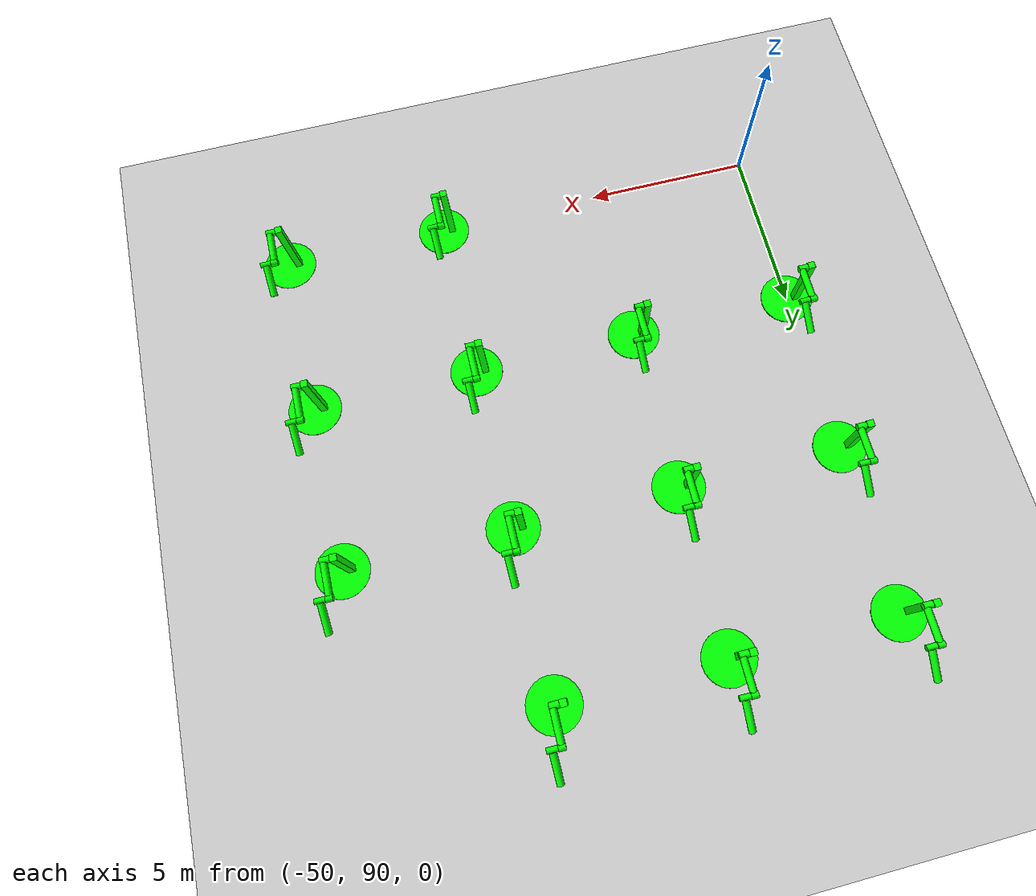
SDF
<sdf version="1.6">
 <world name="double_pendulums">
  <model name="ground_plane">
   <static>true</static>
   <link name="link">
    <collision name="collision">
     <geometry><plane><normal>0 0 1</normal><size>100 100</size></plane></geometry>
    </collision>
    <visual name="visual">
     <geometry><plane><normal>0 0 1</normal><size>100 100</size></plane></geometry>
     <material>
      <ambient>0.8 0.8 0.8 1</ambient>
      <diffuse>0.8 0.8 0.8 1</diffuse>
      <specular>0.8 0.8 0.8 1</specular>
     </material>
    </visual>
   </link>
  </model>
  <model name="dbl_pendulum_452">
   <pose>-40 90 0 0 0 0</pose>
   <link name="base">
    <inertial><mass>100</mass></inertial>
    <visual name="vis_plate_on_ground">
     <pose>0 0 0.01 0 0 0</pose>
     <geometry><cylinder><radius>0.8</radius><length>0.02</length></cylinder></geometry>
     <material><ambient>0 1 0 1</ambient><diffuse>0 1 0 1</diffuse><specular>0 1 0 1</specular></material>
    </visual>
    <visual name="vis_pole">
     <pose>-0.275 0 1.1 0 0 0</pose>
     <geometry><box><size>0.2 0.2 2.2</size></box></geometry>
     <material><ambient>0 1 0 1</ambient><diffuse>0 1 0 1</diffuse><specular>0 1 0 1</specular></material>
    </visual>
    <collision name="col_plate_on_ground">
     <pose>0 0 0.01 0 0 0</pose>
     <geometry><cylinder><radius>0.8</radius><length>0.02</length></cylinder></geometry>
    </collision>
    <collision name="col_pole">
     <pose>-0.275 0 1.1 0 0 0</pose>
     <geometry><box><size>0.2 0.2 2.2</size></box></geometry>
    </collision>
   </link>
   <link name="upper_link">
    <pose>0 0 2.1 -1.5708 0 0</pose>
    <inertial><pose>0 0 0.5 0 0 0</pose></inertial>
    <visual name="vis_upper_joint">
     <pose>-0.05 0 0 0 1.5708 0</pose>
     <geometry><cylinder><radius>0.1</radius><length>0.3</length></cylinder></geometry>
     <material><ambient>0 1 0 1</ambient><diffuse>0 1 0 1</diffuse><specular>0 1 0 1</specular></material>
    </visual>
    <visual name="vis_lower_joint">
     <pose>0 0 1.0 0 1.5708 0</pose>
     <geometry><cylinder><radius>0.1</radius><length>0.2</length></cylinder></geometry>
     <material><ambient>0 1 0 1</ambient><diffuse>0 1 0 1</diffuse><specular>0 1 0 1</specular></material>
    </visual>
    <visual name="vis_cylinder">
     <pose>0 0 0.5 0 0 0</pose>
     <geometry><cylinder><radius>0.1</radius><length>0.9</length></cylinder></geometry>
     <material><ambient>0 1 0 1</ambient><diffuse>0 1 0 1</diffuse><specular>0 1 0 1</specular></material>
    </visual>
    <collision name="col_upper_joint">
     <pose>-0.05 0 0 0 1.5708 0</pose>
     <geometry><cylinder><radius>0.1</radius><length>0.3</length></cylinder></geometry>
    </collision>
    <collision name="col_lower_joint">
     <pose>0 0 1.0 0 1.5708 0</pose>
     <geometry><cylinder><radius>0.1</radius><length>0.2</length></cylinder></geometry>
    </collision>
    <collision name="col_cylinder">
     <pose>0 0 0.5 0 0 0</pose>
     <geometry><cylinder><radius>0.1</radius><length>0.9</length></cylinder></geometry>
    </collision>
   </link>
   <link name="lower_link">
    <pose>0.25 1.0 2.1 -2 0 0</pose>
    <inertial><pose>0 0 0.5 0 0 0</pose></inertial>
    <visual name="vis_lower_joint">
     <pose>0 0 0 0 1.5708 0</pose>
     <geometry><cylinder><radius>0.08</radius><length>0.3</length></cylinder></geometry>
     <material><ambient>0 1 0 1</ambient><diffuse>0 1 0 1</diffuse><specular>0 1 0 1</specular></material>
    </visual>
    <visual name="vis_cylinder">
     <pose>0 0 0.5 0 0 0</pose>
     <geometry><cylinder><radius>0.1</radius><length>0.9</length></cylinder></geometry>
     <material><ambient>0 1 0 1</ambient><diffuse>0 1 0 1</diffuse><specular>0 1 0 1</specular></material>
    </visual>
    <collision name="col_lower_joint">
     <pose>0 0 0 0 1.5708 0</pose>
     <geometry><cylinder><radius>0.08</radius><length>0.3</length></cylinder></geometry>
    </collision>
    <collision name="col_cylinder">
     <pose>0 0 0.5 0 0 0</pose>
     <geometry><cylinder><radius>0.1</radius><length>0.9</length></cylinder></geometry>
    </collision>
   </link>
   <joint name="upper_joint" type="revolute">
    <parent>base</parent>
    <child>upper_link</child>
    <axis><xyz>1.0 0 0</xyz></axis>
   </joint>
   <joint name="lower_joint" type="revolute">
    <parent>upper_link</parent>
    <child>lower_link</child>
    <axis><xyz>1.0 0 0</xyz></axis>
   </joint>
  </model>
  <model name="dbl_pendulum_453">
   <pose>-35 90 0 0 0 0</pose>
   <link name="base">
    <inertial><mass>100</mass></inertial>
    <visual name="vis_plate_on_ground">
     <pose>0 0 0.01 0 0 0</pose>
     <geometry><cylinder><radius>0.8</radius><length>0.02</length></cylinder></geometry>
     <material><ambient>0 1 0 1</ambient><diffuse>0 1 0 1</diffuse><specular>0 1 0 1</specular></material>
    </visual>
    <visual name="vis_pole">
     <pose>-0.275 0 1.1 0 0 0</pose>
     <geometry><box><size>0.2 0.2 2.2</size></box></geometry>
     <material><ambient>0 1 0 1</ambient><diffuse>0 1 0 1</diffuse><specular>0 1 0 1</specular></material>
    </visual>
    <collision name="col_plate_on_ground">
     <pose>0 0 0.01 0 0 0</pose>
     <geometry><cylinder><radius>0.8</radius><length>0.02</length></cylinder></geometry>
    </collision>
    <collision name="col_pole">
     <pose>-0.275 0 1.1 0 0 0</pose>
     <geometry><box><size>0.2 0.2 2.2</size></box></geometry>
    </collision>
   </link>
   <link name="upper_link">
    <pose>0 0 2.1 -1.5708 0 0</pose>
    <inertial><pose>0 0 0.5 0 0 0</pose></inertial>
    <visual name="vis_upper_joint">
     <pose>-0.05 0 0 0 1.5708 0</pose>
     <geometry><cylinder><radius>0.1</radius><length>0.3</length></cylinder></geometry>
     <material><ambient>0 1 0 1</ambient><diffuse>0 1 0 1</diffuse><specular>0 1 0 1</specular></material>
    </visual>
    <visual name="vis_lower_joint">
     <pose>0 0 1.0 0 1.5708 0</pose>
     <geometry><cylinder><radius>0.1</radius><length>0.2</length></cylinder></geometry>
     <material><ambient>0 1 0 1</ambient><diffuse>0 1 0 1</diffuse><specular>0 1 0 1</specular></material>
    </visual>
    <visual name="vis_cylinder">
     <pose>0 0 0.5 0 0 0</pose>
     <geometry><cylinder><radius>0.1</radius><length>0.9</length></cylinder></geometry>
     <material><ambient>0 1 0 1</ambient><diffuse>0 1 0 1</diffuse><specular>0 1 0 1</specular></material>
    </visual>
    <collision name="col_upper_joint">
     <pose>-0.05 0 0 0 1.5708 0</pose>
     <geometry><cylinder><radius>0.1</radius><length>0.3</length></cylinder></geometry>
    </collision>
    <collision name="col_lower_joint">
     <pose>0 0 1.0 0 1.5708 0</pose>
     <geometry><cylinder><radius>0.1</radius><length>0.2</length></cylinder></geometry>
    </collision>
    <collision name="col_cylinder">
     <pose>0 0 0.5 0 0 0</pose>
     <geometry><cylinder><radius>0.1</radius><length>0.9</length></cylinder></geometry>
    </collision>
   </link>
   <link name="lower_link">
    <pose>0.25 1.0 2.1 -2 0 0</pose>
    <inertial><pose>0 0 0.5 0 0 0</pose></inertial>
    <visual name="vis_lower_joint">
     <pose>0 0 0 0 1.5708 0</pose>
     <geometry><cylinder><radius>0.08</radius><length>0.3</length></cylinder></geometry>
     <material><ambient>0 1 0 1</ambient><diffuse>0 1 0 1</diffuse><specular>0 1 0 1</specular></material>
    </visual>
    <visual name="vis_cylinder">
     <pose>0 0 0.5 0 0 0</pose>
     <geometry><cylinder><radius>0.1</radius><length>0.9</length></cylinder></geometry>
     <material><ambient>0 1 0 1</ambient><diffuse>0 1 0 1</diffuse><specular>0 1 0 1</specular></material>
    </visual>
    <collision name="col_lower_joint">
     <pose>0 0 0 0 1.5708 0</pose>
     <geometry><cylinder><radius>0.08</radius><length>0.3</length></cylinder></geometry>
    </collision>
    <collision name="col_cylinder">
     <pose>0 0 0.5 0 0 0</pose>
     <geometry><cylinder><radius>0.1</radius><length>0.9</length></cylinder></geometry>
    </collision>
   </link>
   <joint name="upper_joint" type="revolute">
    <parent>base</parent>
    <child>upper_link</child>
    <axis><xyz>1.0 0 0</xyz></axis>
   </joint>
   <joint name="lower_joint" type="revolute">
    <parent>upper_link</parent>
    <child>lower_link</child>
    <axis><xyz>1.0 0 0</xyz></axis>
   </joint>
  </model>
  <model name="dbl_pendulum_475">
   <pose>-50 95 0 0 0 0</pose>
   <link name="base">
    <inertial><mass>100</mass></inertial>
    <visual name="vis_plate_on_ground">
     <pose>0 0 0.01 0 0 0</pose>
     <geometry><cylinder><radius>0.8</radius><length>0.02</length></cylinder></geometry>
     <material><ambient>0 1 0 1</ambient><diffuse>0 1 0 1</diffuse><specular>0 1 0 1</specular></material>
    </visual>
    <visual name="vis_pole">
     <pose>-0.275 0 1.1 0 0 0</pose>
     <geometry><box><size>0.2 0.2 2.2</size></box></geometry>
     <material><ambient>0 1 0 1</ambient><diffuse>0 1 0 1</diffuse><specular>0 1 0 1</specular></material>
    </visual>
    <collision name="col_plate_on_ground">
     <pose>0 0 0.01 0 0 0</pose>
     <geometry><cylinder><radius>0.8</radius><length>0.02</length></cylinder></geometry>
    </collision>
    <collision name="col_pole">
     <pose>-0.275 0 1.1 0 0 0</pose>
     <geometry><box><size>0.2 0.2 2.2</size></box></geometry>
    </collision>
   </link>
   <link name="upper_link">
    <pose>0 0 2.1 -1.5708 0 0</pose>
    <inertial><pose>0 0 0.5 0 0 0</pose></inertial>
    <visual name="vis_upper_joint">
     <pose>-0.05 0 0 0 1.5708 0</pose>
     <geometry><cylinder><radius>0.1</radius><length>0.3</length></cylinder></geometry>
     <material><ambient>0 1 0 1</ambient><diffuse>0 1 0 1</diffuse><specular>0 1 0 1</specular></material>
    </visual>
    <visual name="vis_lower_joint">
     <pose>0 0 1.0 0 1.5708 0</pose>
     <geometry><cylinder><radius>0.1</radius><length>0.2</length></cylinder></geometry>
     <material><ambient>0 1 0 1</ambient><diffuse>0 1 0 1</diffuse><specular>0 1 0 1</specular></material>
    </visual>
    <visual name="vis_cylinder">
     <pose>0 0 0.5 0 0 0</pose>
     <geometry><cylinder><radius>0.1</radius><length>0.9</length></cylinder></geometry>
     <material><ambient>0 1 0 1</ambient><diffuse>0 1 0 1</diffuse><specular>0 1 0 1</specular></material>
    </visual>
    <collision name="col_upper_joint">
     <pose>-0.05 0 0 0 1.5708 0</pose>
     <geometry><cylinder><radius>0.1</radius><length>0.3</length></cylinder></geometry>
    </collision>
    <collision name="col_lower_joint">
     <pose>0 0 1.0 0 1.5708 0</pose>
     <geometry><cylinder><radius>0.1</radius><length>0.2</length></cylinder></geometry>
    </collision>
    <collision name="col_cylinder">
     <pose>0 0 0.5 0 0 0</pose>
     <geometry><cylinder><radius>0.1</radius><length>0.9</length></cylinder></geometry>
    </collision>
   </link>
   <link name="lower_link">
    <pose>0.25 1.0 2.1 -2 0 0</pose>
    <inertial><pose>0 0 0.5 0 0 0</pose></inertial>
    <visual name="vis_lower_joint">
     <pose>0 0 0 0 1.5708 0</pose>
     <geometry><cylinder><radius>0.08</radius><length>0.3</length></cylinder></geometry>
     <material><ambient>0 1 0 1</ambient><diffuse>0 1 0 1</diffuse><specular>0 1 0 1</specular></material>
    </visual>
    <visual name="vis_cylinder">
     <pose>0 0 0.5 0 0 0</pose>
     <geometry><cylinder><radius>0.1</radius><length>0.9</length></cylinder></geometry>
     <material><ambient>0 1 0 1</ambient><diffuse>0 1 0 1</diffuse><specular>0 1 0 1</specular></material>
    </visual>
    <collision name="col_lower_joint">
     <pose>0 0 0 0 1.5708 0</pose>
     <geometry><cylinder><radius>0.08</radius><length>0.3</length></cylinder></geometry>
    </collision>
    <collision name="col_cylinder">
     <pose>0 0 0.5 0 0 0</pose>
     <geometry><cylinder><radius>0.1</radius><length>0.9</length></cylinder></geometry>
    </collision>
   </link>
   <joint name="upper_joint" type="revolute">
    <parent>base</parent>
    <child>upper_link</child>
    <axis><xyz>1.0 0 0</xyz></axis>
   </joint>
   <joint name="lower_joint" type="revolute">
    <parent>upper_link</parent>
    <child>lower_link</child>
    <axis><xyz>1.0 0 0</xyz></axis>
   </joint>
  </model>
  <model name="dbl_pendulum_476">
   <pose>-45 95 0 0 0 0</pose>
   <link name="base">
    <inertial><mass>100</mass></inertial>
    <visual name="vis_plate_on_ground">
     <pose>0 0 0.01 0 0 0</pose>
     <geometry><cylinder><radius>0.8</radius><length>0.02</length></cylinder></geometry>
     <material><ambient>0 1 0 1</ambient><diffuse>0 1 0 1</diffuse><specular>0 1 0 1</specular></material>
    </visual>
    <visual name="vis_pole">
     <pose>-0.275 0 1.1 0 0 0</pose>
     <geometry><box><size>0.2 0.2 2.2</size></box></geometry>
     <material><ambient>0 1 0 1</ambient><diffuse>0 1 0 1</diffuse><specular>0 1 0 1</specular></material>
    </visual>
    <collision name="col_plate_on_ground">
     <pose>0 0 0.01 0 0 0</pose>
     <geometry><cylinder><radius>0.8</radius><length>0.02</length></cylinder></geometry>
    </collision>
    <collision name="col_pole">
     <pose>-0.275 0 1.1 0 0 0</pose>
     <geometry><box><size>0.2 0.2 2.2</size></box></geometry>
    </collision>
   </link>
   <link name="upper_link">
    <pose>0 0 2.1 -1.5708 0 0</pose>
    <inertial><pose>0 0 0.5 0 0 0</pose></inertial>
    <visual name="vis_upper_joint">
     <pose>-0.05 0 0 0 1.5708 0</pose>
     <geometry><cylinder><radius>0.1</radius><length>0.3</length></cylinder></geometry>
     <material><ambient>0 1 0 1</ambient><diffuse>0 1 0 1</diffuse><specular>0 1 0 1</specular></material>
    </visual>
    <visual name="vis_lower_joint">
     <pose>0 0 1.0 0 1.5708 0</pose>
     <geometry><cylinder><radius>0.1</radius><length>0.2</length></cylinder></geometry>
     <material><ambient>0 1 0 1</ambient><diffuse>0 1 0 1</diffuse><specular>0 1 0 1</specular></material>
    </visual>
    <visual name="vis_cylinder">
     <pose>0 0 0.5 0 0 0</pose>
     <geometry><cylinder><radius>0.1</radius><length>0.9</length></cylinder></geometry>
     <material><ambient>0 1 0 1</ambient><diffuse>0 1 0 1</diffuse><specular>0 1 0 1</specular></material>
    </visual>
    <collision name="col_upper_joint">
     <pose>-0.05 0 0 0 1.5708 0</pose>
     <geometry><cylinder><radius>0.1</radius><length>0.3</length></cylinder></geometry>
    </collision>
    <collision name="col_lower_joint">
     <pose>0 0 1.0 0 1.5708 0</pose>
     <geometry><cylinder><radius>0.1</radius><length>0.2</length></cylinder></geometry>
    </collision>
    <collision name="col_cylinder">
     <pose>0 0 0.5 0 0 0</pose>
     <geometry><cylinder><radius>0.1</radius><length>0.9</length></cylinder></geometry>
    </collision>
   </link>
   <link name="lower_link">
    <pose>0.25 1.0 2.1 -2 0 0</pose>
    <inertial><pose>0 0 0.5 0 0 0</pose></inertial>
    <visual name="vis_lower_joint">
     <pose>0 0 0 0 1.5708 0</pose>
     <geometry><cylinder><radius>0.08</radius><length>0.3</length></cylinder></geometry>
     <material><ambient>0 1 0 1</ambient><diffuse>0 1 0 1</diffuse><specular>0 1 0 1</specular></material>
    </visual>
    <visual name="vis_cylinder">
     <pose>0 0 0.5 0 0 0</pose>
     <geometry><cylinder><radius>0.1</radius><length>0.9</length></cylinder></geometry>
     <material><ambient>0 1 0 1</ambient><diffuse>0 1 0 1</diffuse><specular>0 1 0 1</specular></material>
    </visual>
    <collision name="col_lower_joint">
     <pose>0 0 0 0 1.5708 0</pose>
     <geometry><cylinder><radius>0.08</radius><length>0.3</length></cylinder></geometry>
    </collision>
    <collision name="col_cylinder">
     <pose>0 0 0.5 0 0 0</pose>
     <geometry><cylinder><radius>0.1</radius><length>0.9</length></cylinder></geometry>
    </collision>
   </link>
   <joint name="upper_joint" type="revolute">
    <parent>base</parent>
    <child>upper_link</child>
    <axis><xyz>1.0 0 0</xyz></axis>
   </joint>
   <joint name="lower_joint" type="revolute">
    <parent>upper_link</parent>
    <child>lower_link</child>
    <axis><xyz>1.0 0 0</xyz></axis>
   </joint>
  </model>
  <model name="dbl_pendulum_477">
   <pose>-40 95 0 0 0 0</pose>
   <link name="base">
    <inertial><mass>100</mass></inertial>
    <visual name="vis_plate_on_ground">
     <pose>0 0 0.01 0 0 0</pose>
     <geometry><cylinder><radius>0.8</radius><length>0.02</length></cylinder></geometry>
     <material><ambient>0 1 0 1</ambient><diffuse>0 1 0 1</diffuse><specular>0 1 0 1</specular></material>
    </visual>
    <visual name="vis_pole">
     <pose>-0.275 0 1.1 0 0 0</pose>
     <geometry><box><size>0.2 0.2 2.2</size></box></geometry>
     <material><ambient>0 1 0 1</ambient><diffuse>0 1 0 1</diffuse><specular>0 1 0 1</specular></material>
    </visual>
    <collision name="col_plate_on_ground">
     <pose>0 0 0.01 0 0 0</pose>
     <geometry><cylinder><radius>0.8</radius><length>0.02</length></cylinder></geometry>
    </collision>
    <collision name="col_pole">
     <pose>-0.275 0 1.1 0 0 0</pose>
     <geometry><box><size>0.2 0.2 2.2</size></box></geometry>
    </collision>
   </link>
   <link name="upper_link">
    <pose>0 0 2.1 -1.5708 0 0</pose>
    <inertial><pose>0 0 0.5 0 0 0</pose></inertial>
    <visual name="vis_upper_joint">
     <pose>-0.05 0 0 0 1.5708 0</pose>
     <geometry><cylinder><radius>0.1</radius><length>0.3</length></cylinder></geometry>
     <material><ambient>0 1 0 1</ambient><diffuse>0 1 0 1</diffuse><specular>0 1 0 1</specular></material>
    </visual>
    <visual name="vis_lower_joint">
     <pose>0 0 1.0 0 1.5708 0</pose>
     <geometry><cylinder><radius>0.1</radius><length>0.2</length></cylinder></geometry>
     <material><ambient>0 1 0 1</ambient><diffuse>0 1 0 1</diffuse><specular>0 1 0 1</specular></material>
    </visual>
    <visual name="vis_cylinder">
     <pose>0 0 0.5 0 0 0</pose>
     <geometry><cylinder><radius>0.1</radius><length>0.9</length></cylinder></geometry>
     <material><ambient>0 1 0 1</ambient><diffuse>0 1 0 1</diffuse><specular>0 1 0 1</specular></material>
    </visual>
    <collision name="col_upper_joint">
     <pose>-0.05 0 0 0 1.5708 0</pose>
     <geometry><cylinder><radius>0.1</radius><length>0.3</length></cylinder></geometry>
    </collision>
    <collision name="col_lower_joint">
     <pose>0 0 1.0 0 1.5708 0</pose>
     <geometry><cylinder><radius>0.1</radius><length>0.2</length></cylinder></geometry>
    </collision>
    <collision name="col_cylinder">
     <pose>0 0 0.5 0 0 0</pose>
     <geometry><cylinder><radius>0.1</radius><length>0.9</length></cylinder></geometry>
    </collision>
   </link>
   <link name="lower_link">
    <pose>0.25 1.0 2.1 -2 0 0</pose>
    <inertial><pose>0 0 0.5 0 0 0</pose></inertial>
    <visual name="vis_lower_joint">
     <pose>0 0 0 0 1.5708 0</pose>
     <geometry><cylinder><radius>0.08</radius><length>0.3</length></cylinder></geometry>
     <material><ambient>0 1 0 1</ambient><diffuse>0 1 0 1</diffuse><specular>0 1 0 1</specular></material>
    </visual>
    <visual name="vis_cylinder">
     <pose>0 0 0.5 0 0 0</pose>
     <geometry><cylinder><radius>0.1</radius><length>0.9</length></cylinder></geometry>
     <material><ambient>0 1 0 1</ambient><diffuse>0 1 0 1</diffuse><specular>0 1 0 1</specular></material>
    </visual>
    <collision name="col_lower_joint">
     <pose>0 0 0 0 1.5708 0</pose>
     <geometry><cylinder><radius>0.08</radius><length>0.3</length></cylinder></geometry>
    </collision>
    <collision name="col_cylinder">
     <pose>0 0 0.5 0 0 0</pose>
     <geometry><cylinder><radius>0.1</radius><length>0.9</length></cylinder></geometry>
    </collision>
   </link>
   <joint name="upper_joint" type="revolute">
    <parent>base</parent>
    <child>upper_link</child>
    <axis><xyz>1.0 0 0</xyz></axis>
   </joint>
   <joint name="lower_joint" type="revolute">
    <parent>upper_link</parent>
    <child>lower_link</child>
    <axis><xyz>1.0 0 0</xyz></axis>
   </joint>
  </model>
  <model name="dbl_pendulum_478">
   <pose>-35 95 0 0 0 0</pose>
   <link name="base">
    <inertial><mass>100</mass></inertial>
    <visual name="vis_plate_on_ground">
     <pose>0 0 0.01 0 0 0</pose>
     <geometry><cylinder><radius>0.8</radius><length>0.02</length></cylinder></geometry>
     <material><ambient>0 1 0 1</ambient><diffuse>0 1 0 1</diffuse><specular>0 1 0 1</specular></material>
    </visual>
    <visual name="vis_pole">
     <pose>-0.275 0 1.1 0 0 0</pose>
     <geometry><box><size>0.2 0.2 2.2</size></box></geometry>
     <material><ambient>0 1 0 1</ambient><diffuse>0 1 0 1</diffuse><specular>0 1 0 1</specular></material>
    </visual>
    <collision name="col_plate_on_ground">
     <pose>0 0 0.01 0 0 0</pose>
     <geometry><cylinder><radius>0.8</radius><length>0.02</length></cylinder></geometry>
    </collision>
    <collision name="col_pole">
     <pose>-0.275 0 1.1 0 0 0</pose>
     <geometry><box><size>0.2 0.2 2.2</size></box></geometry>
    </collision>
   </link>
   <link name="upper_link">
    <pose>0 0 2.1 -1.5708 0 0</pose>
    <inertial><pose>0 0 0.5 0 0 0</pose></inertial>
    <visual name="vis_upper_joint">
     <pose>-0.05 0 0 0 1.5708 0</pose>
     <geometry><cylinder><radius>0.1</radius><length>0.3</length></cylinder></geometry>
     <material><ambient>0 1 0 1</ambient><diffuse>0 1 0 1</diffuse><specular>0 1 0 1</specular></material>
    </visual>
    <visual name="vis_lower_joint">
     <pose>0 0 1.0 0 1.5708 0</pose>
     <geometry><cylinder><radius>0.1</radius><length>0.2</length></cylinder></geometry>
     <material><ambient>0 1 0 1</ambient><diffuse>0 1 0 1</diffuse><specular>0 1 0 1</specular></material>
    </visual>
    <visual name="vis_cylinder">
     <pose>0 0 0.5 0 0 0</pose>
     <geometry><cylinder><radius>0.1</radius><length>0.9</length></cylinder></geometry>
     <material><ambient>0 1 0 1</ambient><diffuse>0 1 0 1</diffuse><specular>0 1 0 1</specular></material>
    </visual>
    <collision name="col_upper_joint">
     <pose>-0.05 0 0 0 1.5708 0</pose>
     <geometry><cylinder><radius>0.1</radius><length>0.3</length></cylinder></geometry>
    </collision>
    <collision name="col_lower_joint">
     <pose>0 0 1.0 0 1.5708 0</pose>
     <geometry><cylinder><radius>0.1</radius><length>0.2</length></cylinder></geometry>
    </collision>
    <collision name="col_cylinder">
     <pose>0 0 0.5 0 0 0</pose>
     <geometry><cylinder><radius>0.1</radius><length>0.9</length></cylinder></geometry>
    </collision>
   </link>
   <link name="lower_link">
    <pose>0.25 1.0 2.1 -2 0 0</pose>
    <inertial><pose>0 0 0.5 0 0 0</pose></inertial>
    <visual name="vis_lower_joint">
     <pose>0 0 0 0 1.5708 0</pose>
     <geometry><cylinder><radius>0.08</radius><length>0.3</length></cylinder></geometry>
     <material><ambient>0 1 0 1</ambient><diffuse>0 1 0 1</diffuse><specular>0 1 0 1</specular></material>
    </visual>
    <visual name="vis_cylinder">
     <pose>0 0 0.5 0 0 0</pose>
     <geometry><cylinder><radius>0.1</radius><length>0.9</length></cylinder></geometry>
     <material><ambient>0 1 0 1</ambient><diffuse>0 1 0 1</diffuse><specular>0 1 0 1</specular></material>
    </visual>
    <collision name="col_lower_joint">
     <pose>0 0 0 0 1.5708 0</pose>
     <geometry><cylinder><radius>0.08</radius><length>0.3</length></cylinder></geometry>
    </collision>
    <collision name="col_cylinder">
     <pose>0 0 0.5 0 0 0</pose>
     <geometry><cylinder><radius>0.1</radius><length>0.9</length></cylinder></geometry>
    </collision>
   </link>
   <joint name="upper_joint" type="revolute">
    <parent>base</parent>
    <child>upper_link</child>
    <axis><xyz>1.0 0 0</xyz></axis>
   </joint>
   <joint name="lower_joint" type="revolute">
    <parent>upper_link</parent>
    <child>lower_link</child>
    <axis><xyz>1.0 0 0</xyz></axis>
   </joint>
  </model>
  <model name="dbl_pendulum_500">
   <pose>-50 100 0 0 0 0</pose>
   <link name="base">
    <inertial><mass>100</mass></inertial>
    <visual name="vis_plate_on_ground">
     <pose>0 0 0.01 0 0 0</pose>
     <geometry><cylinder><radius>0.8</radius><length>0.02</length></cylinder></geometry>
     <material><ambient>0 1 0 1</ambient><diffuse>0 1 0 1</diffuse><specular>0 1 0 1</specular></material>
    </visual>
    <visual name="vis_pole">
     <pose>-0.275 0 1.1 0 0 0</pose>
     <geometry><box><size>0.2 0.2 2.2</size></box></geometry>
     <material><ambient>0 1 0 1</ambient><diffuse>0 1 0 1</diffuse><specular>0 1 0 1</specular></material>
    </visual>
    <collision name="col_plate_on_ground">
     <pose>0 0 0.01 0 0 0</pose>
     <geometry><cylinder><radius>0.8</radius><length>0.02</length></cylinder></geometry>
    </collision>
    <collision name="col_pole">
     <pose>-0.275 0 1.1 0 0 0</pose>
     <geometry><box><size>0.2 0.2 2.2</size></box></geometry>
    </collision>
   </link>
   <link name="upper_link">
    <pose>0 0 2.1 -1.5708 0 0</pose>
    <inertial><pose>0 0 0.5 0 0 0</pose></inertial>
    <visual name="vis_upper_joint">
     <pose>-0.05 0 0 0 1.5708 0</pose>
     <geometry><cylinder><radius>0.1</radius><length>0.3</length></cylinder></geometry>
     <material><ambient>0 1 0 1</ambient><diffuse>0 1 0 1</diffuse><specular>0 1 0 1</specular></material>
    </visual>
    <visual name="vis_lower_joint">
     <pose>0 0 1.0 0 1.5708 0</pose>
     <geometry><cylinder><radius>0.1</radius><length>0.2</length></cylinder></geometry>
     <material><ambient>0 1 0 1</ambient><diffuse>0 1 0 1</diffuse><specular>0 1 0 1</specular></material>
    </visual>
    <visual name="vis_cylinder">
     <pose>0 0 0.5 0 0 0</pose>
     <geometry><cylinder><radius>0.1</radius><length>0.9</length></cylinder></geometry>
     <material><ambient>0 1 0 1</ambient><diffuse>0 1 0 1</diffuse><specular>0 1 0 1</specular></material>
    </visual>
    <collision name="col_upper_joint">
     <pose>-0.05 0 0 0 1.5708 0</pose>
     <geometry><cylinder><radius>0.1</radius><length>0.3</length></cylinder></geometry>
    </collision>
    <collision name="col_lower_joint">
     <pose>0 0 1.0 0 1.5708 0</pose>
     <geometry><cylinder><radius>0.1</radius><length>0.2</length></cylinder></geometry>
    </collision>
    <collision name="col_cylinder">
     <pose>0 0 0.5 0 0 0</pose>
     <geometry><cylinder><radius>0.1</radius><length>0.9</length></cylinder></geometry>
    </collision>
   </link>
   <link name="lower_link">
    <pose>0.25 1.0 2.1 -2 0 0</pose>
    <inertial><pose>0 0 0.5 0 0 0</pose></inertial>
    <visual name="vis_lower_joint">
     <pose>0 0 0 0 1.5708 0</pose>
     <geometry><cylinder><radius>0.08</radius><length>0.3</length></cylinder></geometry>
     <material><ambient>0 1 0 1</ambient><diffuse>0 1 0 1</diffuse><specular>0 1 0 1</specular></material>
    </visual>
    <visual name="vis_cylinder">
     <pose>0 0 0.5 0 0 0</pose>
     <geometry><cylinder><radius>0.1</radius><length>0.9</length></cylinder></geometry>
     <material><ambient>0 1 0 1</ambient><diffuse>0 1 0 1</diffuse><specular>0 1 0 1</specular></material>
    </visual>
    <collision name="col_lower_joint">
     <pose>0 0 0 0 1.5708 0</pose>
     <geometry><cylinder><radius>0.08</radius><length>0.3</length></cylinder></geometry>
    </collision>
    <collision name="col_cylinder">
     <pose>0 0 0.5 0 0 0</pose>
     <geometry><cylinder><radius>0.1</radius><length>0.9</length></cylinder></geometry>
    </collision>
   </link>
   <joint name="upper_joint" type="revolute">
    <parent>base</parent>
    <child>upper_link</child>
    <axis><xyz>1.0 0 0</xyz></axis>
   </joint>
   <joint name="lower_joint" type="revolute">
    <parent>upper_link</parent>
    <child>lower_link</child>
    <axis><xyz>1.0 0 0</xyz></axis>
   </joint>
  </model>
  <model name="dbl_pendulum_501">
   <pose>-45 100 0 0 0 0</pose>
   <link name="base">
    <inertial><mass>100</mass></inertial>
    <visual name="vis_plate_on_ground">
     <pose>0 0 0.01 0 0 0</pose>
     <geometry><cylinder><radius>0.8</radius><length>0.02</length></cylinder></geometry>
     <material><ambient>0 1 0 1</ambient><diffuse>0 1 0 1</diffuse><specular>0 1 0 1</specular></material>
    </visual>
    <visual name="vis_pole">
     <pose>-0.275 0 1.1 0 0 0</pose>
     <geometry><box><size>0.2 0.2 2.2</size></box></geometry>
     <material><ambient>0 1 0 1</ambient><diffuse>0 1 0 1</diffuse><specular>0 1 0 1</specular></material>
    </visual>
    <collision name="col_plate_on_ground">
     <pose>0 0 0.01 0 0 0</pose>
     <geometry><cylinder><radius>0.8</radius><length>0.02</length></cylinder></geometry>
    </collision>
    <collision name="col_pole">
     <pose>-0.275 0 1.1 0 0 0</pose>
     <geometry><box><size>0.2 0.2 2.2</size></box></geometry>
    </collision>
   </link>
   <link name="upper_link">
    <pose>0 0 2.1 -1.5708 0 0</pose>
    <inertial><pose>0 0 0.5 0 0 0</pose></inertial>
    <visual name="vis_upper_joint">
     <pose>-0.05 0 0 0 1.5708 0</pose>
     <geometry><cylinder><radius>0.1</radius><length>0.3</length></cylinder></geometry>
     <material><ambient>0 1 0 1</ambient><diffuse>0 1 0 1</diffuse><specular>0 1 0 1</specular></material>
    </visual>
    <visual name="vis_lower_joint">
     <pose>0 0 1.0 0 1.5708 0</pose>
     <geometry><cylinder><radius>0.1</radius><length>0.2</length></cylinder></geometry>
     <material><ambient>0 1 0 1</ambient><diffuse>0 1 0 1</diffuse><specular>0 1 0 1</specular></material>
    </visual>
    <visual name="vis_cylinder">
     <pose>0 0 0.5 0 0 0</pose>
     <geometry><cylinder><radius>0.1</radius><length>0.9</length></cylinder></geometry>
     <material><ambient>0 1 0 1</ambient><diffuse>0 1 0 1</diffuse><specular>0 1 0 1</specular></material>
    </visual>
    <collision name="col_upper_joint">
     <pose>-0.05 0 0 0 1.5708 0</pose>
     <geometry><cylinder><radius>0.1</radius><length>0.3</length></cylinder></geometry>
    </collision>
    <collision name="col_lower_joint">
     <pose>0 0 1.0 0 1.5708 0</pose>
     <geometry><cylinder><radius>0.1</radius><length>0.2</length></cylinder></geometry>
    </collision>
    <collision name="col_cylinder">
     <pose>0 0 0.5 0 0 0</pose>
     <geometry><cylinder><radius>0.1</radius><length>0.9</length></cylinder></geometry>
    </collision>
   </link>
   <link name="lower_link">
    <pose>0.25 1.0 2.1 -2 0 0</pose>
    <inertial><pose>0 0 0.5 0 0 0</pose></inertial>
    <visual name="vis_lower_joint">
     <pose>0 0 0 0 1.5708 0</pose>
     <geometry><cylinder><radius>0.08</radius><length>0.3</length></cylinder></geometry>
     <material><ambient>0 1 0 1</ambient><diffuse>0 1 0 1</diffuse><specular>0 1 0 1</specular></material>
    </visual>
    <visual name="vis_cylinder">
     <pose>0 0 0.5 0 0 0</pose>
     <geometry><cylinder><radius>0.1</radius><length>0.9</length></cylinder></geometry>
     <material><ambient>0 1 0 1</ambient><diffuse>0 1 0 1</diffuse><specular>0 1 0 1</specular></material>
    </visual>
    <collision name="col_lower_joint">
     <pose>0 0 0 0 1.5708 0</pose>
     <geometry><cylinder><radius>0.08</radius><length>0.3</length></cylinder></geometry>
    </collision>
    <collision name="col_cylinder">
     <pose>0 0 0.5 0 0 0</pose>
     <geometry><cylinder><radius>0.1</radius><length>0.9</length></cylinder></geometry>
    </collision>
   </link>
   <joint name="upper_joint" type="revolute">
    <parent>base</parent>
    <child>upper_link</child>
    <axis><xyz>1.0 0 0</xyz></axis>
   </joint>
   <joint name="lower_joint" type="revolute">
    <parent>upper_link</parent>
    <child>lower_link</child>
    <axis><xyz>1.0 0 0</xyz></axis>
   </joint>
  </model>
  <model name="dbl_pendulum_502">
   <pose>-40 100 0 0 0 0</pose>
   <link name="base">
    <inertial><mass>100</mass></inertial>
    <visual name="vis_plate_on_ground">
     <pose>0 0 0.01 0 0 0</pose>
     <geometry><cylinder><radius>0.8</radius><length>0.02</length></cylinder></geometry>
     <material><ambient>0 1 0 1</ambient><diffuse>0 1 0 1</diffuse><specular>0 1 0 1</specular></material>
    </visual>
    <visual name="vis_pole">
     <pose>-0.275 0 1.1 0 0 0</pose>
     <geometry><box><size>0.2 0.2 2.2</size></box></geometry>
     <material><ambient>0 1 0 1</ambient><diffuse>0 1 0 1</diffuse><specular>0 1 0 1</specular></material>
    </visual>
    <collision name="col_plate_on_ground">
     <pose>0 0 0.01 0 0 0</pose>
     <geometry><cylinder><radius>0.8</radius><length>0.02</length></cylinder></geometry>
    </collision>
    <collision name="col_pole">
     <pose>-0.275 0 1.1 0 0 0</pose>
     <geometry><box><size>0.2 0.2 2.2</size></box></geometry>
    </collision>
   </link>
   <link name="upper_link">
    <pose>0 0 2.1 -1.5708 0 0</pose>
    <inertial><pose>0 0 0.5 0 0 0</pose></inertial>
    <visual name="vis_upper_joint">
     <pose>-0.05 0 0 0 1.5708 0</pose>
     <geometry><cylinder><radius>0.1</radius><length>0.3</length></cylinder></geometry>
     <material><ambient>0 1 0 1</ambient><diffuse>0 1 0 1</diffuse><specular>0 1 0 1</specular></material>
    </visual>
    <visual name="vis_lower_joint">
     <pose>0 0 1.0 0 1.5708 0</pose>
     <geometry><cylinder><radius>0.1</radius><length>0.2</length></cylinder></geometry>
     <material><ambient>0 1 0 1</ambient><diffuse>0 1 0 1</diffuse><specular>0 1 0 1</specular></material>
    </visual>
    <visual name="vis_cylinder">
     <pose>0 0 0.5 0 0 0</pose>
     <geometry><cylinder><radius>0.1</radius><length>0.9</length></cylinder></geometry>
     <material><ambient>0 1 0 1</ambient><diffuse>0 1 0 1</diffuse><specular>0 1 0 1</specular></material>
    </visual>
    <collision name="col_upper_joint">
     <pose>-0.05 0 0 0 1.5708 0</pose>
     <geometry><cylinder><radius>0.1</radius><length>0.3</length></cylinder></geometry>
    </collision>
    <collision name="col_lower_joint">
     <pose>0 0 1.0 0 1.5708 0</pose>
     <geometry><cylinder><radius>0.1</radius><length>0.2</length></cylinder></geometry>
    </collision>
    <collision name="col_cylinder">
     <pose>0 0 0.5 0 0 0</pose>
     <geometry><cylinder><radius>0.1</radius><length>0.9</length></cylinder></geometry>
    </collision>
   </link>
   <link name="lower_link">
    <pose>0.25 1.0 2.1 -2 0 0</pose>
    <inertial><pose>0 0 0.5 0 0 0</pose></inertial>
    <visual name="vis_lower_joint">
     <pose>0 0 0 0 1.5708 0</pose>
     <geometry><cylinder><radius>0.08</radius><length>0.3</length></cylinder></geometry>
     <material><ambient>0 1 0 1</ambient><diffuse>0 1 0 1</diffuse><specular>0 1 0 1</specular></material>
    </visual>
    <visual name="vis_cylinder">
     <pose>0 0 0.5 0 0 0</pose>
     <geometry><cylinder><radius>0.1</radius><length>0.9</length></cylinder></geometry>
     <material><ambient>0 1 0 1</ambient><diffuse>0 1 0 1</diffuse><specular>0 1 0 1</specular></material>
    </visual>
    <collision name="col_lower_joint">
     <pose>0 0 0 0 1.5708 0</pose>
     <geometry><cylinder><radius>0.08</radius><length>0.3</length></cylinder></geometry>
    </collision>
    <collision name="col_cylinder">
     <pose>0 0 0.5 0 0 0</pose>
     <geometry><cylinder><radius>0.1</radius><length>0.9</length></cylinder></geometry>
    </collision>
   </link>
   <joint name="upper_joint" type="revolute">
    <parent>base</parent>
    <child>upper_link</child>
    <axis><xyz>1.0 0 0</xyz></axis>
   </joint>
   <joint name="lower_joint" type="revolute">
    <parent>upper_link</parent>
    <child>lower_link</child>
    <axis><xyz>1.0 0 0</xyz></axis>
   </joint>
  </model>
  <model name="dbl_pendulum_503">
   <pose>-35 100 0 0 0 0</pose>
   <link name="base">
    <inertial><mass>100</mass></inertial>
    <visual name="vis_plate_on_ground">
     <pose>0 0 0.01 0 0 0</pose>
     <geometry><cylinder><radius>0.8</radius><length>0.02</length></cylinder></geometry>
     <material><ambient>0 1 0 1</ambient><diffuse>0 1 0 1</diffuse><specular>0 1 0 1</specular></material>
    </visual>
    <visual name="vis_pole">
     <pose>-0.275 0 1.1 0 0 0</pose>
     <geometry><box><size>0.2 0.2 2.2</size></box></geometry>
     <material><ambient>0 1 0 1</ambient><diffuse>0 1 0 1</diffuse><specular>0 1 0 1</specular></material>
    </visual>
    <collision name="col_plate_on_ground">
     <pose>0 0 0.01 0 0 0</pose>
     <geometry><cylinder><radius>0.8</radius><length>0.02</length></cylinder></geometry>
    </collision>
    <collision name="col_pole">
     <pose>-0.275 0 1.1 0 0 0</pose>
     <geometry><box><size>0.2 0.2 2.2</size></box></geometry>
    </collision>
   </link>
   <link name="upper_link">
    <pose>0 0 2.1 -1.5708 0 0</pose>
    <inertial><pose>0 0 0.5 0 0 0</pose></inertial>
    <visual name="vis_upper_joint">
     <pose>-0.05 0 0 0 1.5708 0</pose>
     <geometry><cylinder><radius>0.1</radius><length>0.3</length></cylinder></geometry>
     <material><ambient>0 1 0 1</ambient><diffuse>0 1 0 1</diffuse><specular>0 1 0 1</specular></material>
    </visual>
    <visual name="vis_lower_joint">
     <pose>0 0 1.0 0 1.5708 0</pose>
     <geometry><cylinder><radius>0.1</radius><length>0.2</length></cylinder></geometry>
     <material><ambient>0 1 0 1</ambient><diffuse>0 1 0 1</diffuse><specular>0 1 0 1</specular></material>
    </visual>
    <visual name="vis_cylinder">
     <pose>0 0 0.5 0 0 0</pose>
     <geometry><cylinder><radius>0.1</radius><length>0.9</length></cylinder></geometry>
     <material><ambient>0 1 0 1</ambient><diffuse>0 1 0 1</diffuse><specular>0 1 0 1</specular></material>
    </visual>
    <collision name="col_upper_joint">
     <pose>-0.05 0 0 0 1.5708 0</pose>
     <geometry><cylinder><radius>0.1</radius><length>0.3</length></cylinder></geometry>
    </collision>
    <collision name="col_lower_joint">
     <pose>0 0 1.0 0 1.5708 0</pose>
     <geometry><cylinder><radius>0.1</radius><length>0.2</length></cylinder></geometry>
    </collision>
    <collision name="col_cylinder">
     <pose>0 0 0.5 0 0 0</pose>
     <geometry><cylinder><radius>0.1</radius><length>0.9</length></cylinder></geometry>
    </collision>
   </link>
   <link name="lower_link">
    <pose>0.25 1.0 2.1 -2 0 0</pose>
    <inertial><pose>0 0 0.5 0 0 0</pose></inertial>
    <visual name="vis_lower_joint">
     <pose>0 0 0 0 1.5708 0</pose>
     <geometry><cylinder><radius>0.08</radius><length>0.3</length></cylinder></geometry>
     <material><ambient>0 1 0 1</ambient><diffuse>0 1 0 1</diffuse><specular>0 1 0 1</specular></material>
    </visual>
    <visual name="vis_cylinder">
     <pose>0 0 0.5 0 0 0</pose>
     <geometry><cylinder><radius>0.1</radius><length>0.9</length></cylinder></geometry>
     <material><ambient>0 1 0 1</ambient><diffuse>0 1 0 1</diffuse><specular>0 1 0 1</specular></material>
    </visual>
    <collision name="col_lower_joint">
     <pose>0 0 0 0 1.5708 0</pose>
     <geometry><cylinder><radius>0.08</radius><length>0.3</length></cylinder></geometry>
    </collision>
    <collision name="col_cylinder">
     <pose>0 0 0.5 0 0 0</pose>
     <geometry><cylinder><radius>0.1</radius><length>0.9</length></cylinder></geometry>
    </collision>
   </link>
   <joint name="upper_joint" type="revolute">
    <parent>base</parent>
    <child>upper_link</child>
    <axis><xyz>1.0 0 0</xyz></axis>
   </joint>
   <joint name="lower_joint" type="revolute">
    <parent>upper_link</parent>
    <child>lower_link</child>
    <axis><xyz>1.0 0 0</xyz></axis>
   </joint>
  </model>
  <model name="dbl_pendulum_525">
   <pose>-50 105 0 0 0 0</pose>
   <link name="base">
    <inertial><mass>100</mass></inertial>
    <visual name="vis_plate_on_ground">
     <pose>0 0 0.01 0 0 0</pose>
     <geometry><cylinder><radius>0.8</radius><length>0.02</length></cylinder></geometry>
     <material><ambient>0 1 0 1</ambient><diffuse>0 1 0 1</diffuse><specular>0 1 0 1</specular></material>
    </visual>
    <visual name="vis_pole">
     <pose>-0.275 0 1.1 0 0 0</pose>
     <geometry><box><size>0.2 0.2 2.2</size></box></geometry>
     <material><ambient>0 1 0 1</ambient><diffuse>0 1 0 1</diffuse><specular>0 1 0 1</specular></material>
    </visual>
    <collision name="col_plate_on_ground">
     <pose>0 0 0.01 0 0 0</pose>
     <geometry><cylinder><radius>0.8</radius><length>0.02</length></cylinder></geometry>
    </collision>
    <collision name="col_pole">
     <pose>-0.275 0 1.1 0 0 0</pose>
     <geometry><box><size>0.2 0.2 2.2</size></box></geometry>
    </collision>
   </link>
   <link name="upper_link">
    <pose>0 0 2.1 -1.5708 0 0</pose>
    <inertial><pose>0 0 0.5 0 0 0</pose></inertial>
    <visual name="vis_upper_joint">
     <pose>-0.05 0 0 0 1.5708 0</pose>
     <geometry><cylinder><radius>0.1</radius><length>0.3</length></cylinder></geometry>
     <material><ambient>0 1 0 1</ambient><diffuse>0 1 0 1</diffuse><specular>0 1 0 1</specular></material>
    </visual>
    <visual name="vis_lower_joint">
     <pose>0 0 1.0 0 1.5708 0</pose>
     <geometry><cylinder><radius>0.1</radius><length>0.2</length></cylinder></geometry>
     <material><ambient>0 1 0 1</ambient><diffuse>0 1 0 1</diffuse><specular>0 1 0 1</specular></material>
    </visual>
    <visual name="vis_cylinder">
     <pose>0 0 0.5 0 0 0</pose>
     <geometry><cylinder><radius>0.1</radius><length>0.9</length></cylinder></geometry>
     <material><ambient>0 1 0 1</ambient><diffuse>0 1 0 1</diffuse><specular>0 1 0 1</specular></material>
    </visual>
    <collision name="col_upper_joint">
     <pose>-0.05 0 0 0 1.5708 0</pose>
     <geometry><cylinder><radius>0.1</radius><length>0.3</length></cylinder></geometry>
    </collision>
    <collision name="col_lower_joint">
     <pose>0 0 1.0 0 1.5708 0</pose>
     <geometry><cylinder><radius>0.1</radius><length>0.2</length></cylinder></geometry>
    </collision>
    <collision name="col_cylinder">
     <pose>0 0 0.5 0 0 0</pose>
     <geometry><cylinder><radius>0.1</radius><length>0.9</length></cylinder></geometry>
    </collision>
   </link>
   <link name="lower_link">
    <pose>0.25 1.0 2.1 -2 0 0</pose>
    <inertial><pose>0 0 0.5 0 0 0</pose></inertial>
    <visual name="vis_lower_joint">
     <pose>0 0 0 0 1.5708 0</pose>
     <geometry><cylinder><radius>0.08</radius><length>0.3</length></cylinder></geometry>
     <material><ambient>0 1 0 1</ambient><diffuse>0 1 0 1</diffuse><specular>0 1 0 1</specular></material>
    </visual>
    <visual name="vis_cylinder">
     <pose>0 0 0.5 0 0 0</pose>
     <geometry><cylinder><radius>0.1</radius><length>0.9</length></cylinder></geometry>
     <material><ambient>0 1 0 1</ambient><diffuse>0 1 0 1</diffuse><specular>0 1 0 1</specular></material>
    </visual>
    <collision name="col_lower_joint">
     <pose>0 0 0 0 1.5708 0</pose>
     <geometry><cylinder><radius>0.08</radius><length>0.3</length></cylinder></geometry>
    </collision>
    <collision name="col_cylinder">
     <pose>0 0 0.5 0 0 0</pose>
     <geometry><cylinder><radius>0.1</radius><length>0.9</length></cylinder></geometry>
    </collision>
   </link>
   <joint name="upper_joint" type="revolute">
    <parent>base</parent>
    <child>upper_link</child>
    <axis><xyz>1.0 0 0</xyz></axis>
   </joint>
   <joint name="lower_joint" type="revolute">
    <parent>upper_link</parent>
    <child>lower_link</child>
    <axis><xyz>1.0 0 0</xyz></axis>
   </joint>
  </model>
  <model name="dbl_pendulum_526">
   <pose>-45 105 0 0 0 0</pose>
   <link name="base">
    <inertial><mass>100</mass></inertial>
    <visual name="vis_plate_on_ground">
     <pose>0 0 0.01 0 0 0</pose>
     <geometry><cylinder><radius>0.8</radius><length>0.02</length></cylinder></geometry>
     <material><ambient>0 1 0 1</ambient><diffuse>0 1 0 1</diffuse><specular>0 1 0 1</specular></material>
    </visual>
    <visual name="vis_pole">
     <pose>-0.275 0 1.1 0 0 0</pose>
     <geometry><box><size>0.2 0.2 2.2</size></box></geometry>
     <material><ambient>0 1 0 1</ambient><diffuse>0 1 0 1</diffuse><specular>0 1 0 1</specular></material>
    </visual>
    <collision name="col_plate_on_ground">
     <pose>0 0 0.01 0 0 0</pose>
     <geometry><cylinder><radius>0.8</radius><length>0.02</length></cylinder></geometry>
    </collision>
    <collision name="col_pole">
     <pose>-0.275 0 1.1 0 0 0</pose>
     <geometry><box><size>0.2 0.2 2.2</size></box></geometry>
    </collision>
   </link>
   <link name="upper_link">
    <pose>0 0 2.1 -1.5708 0 0</pose>
    <inertial><pose>0 0 0.5 0 0 0</pose></inertial>
    <visual name="vis_upper_joint">
     <pose>-0.05 0 0 0 1.5708 0</pose>
     <geometry><cylinder><radius>0.1</radius><length>0.3</length></cylinder></geometry>
     <material><ambient>0 1 0 1</ambient><diffuse>0 1 0 1</diffuse><specular>0 1 0 1</specular></material>
    </visual>
    <visual name="vis_lower_joint">
     <pose>0 0 1.0 0 1.5708 0</pose>
     <geometry><cylinder><radius>0.1</radius><length>0.2</length></cylinder></geometry>
     <material><ambient>0 1 0 1</ambient><diffuse>0 1 0 1</diffuse><specular>0 1 0 1</specular></material>
    </visual>
    <visual name="vis_cylinder">
     <pose>0 0 0.5 0 0 0</pose>
     <geometry><cylinder><radius>0.1</radius><length>0.9</length></cylinder></geometry>
     <material><ambient>0 1 0 1</ambient><diffuse>0 1 0 1</diffuse><specular>0 1 0 1</specular></material>
    </visual>
    <collision name="col_upper_joint">
     <pose>-0.05 0 0 0 1.5708 0</pose>
     <geometry><cylinder><radius>0.1</radius><length>0.3</length></cylinder></geometry>
    </collision>
    <collision name="col_lower_joint">
     <pose>0 0 1.0 0 1.5708 0</pose>
     <geometry><cylinder><radius>0.1</radius><length>0.2</length></cylinder></geometry>
    </collision>
    <collision name="col_cylinder">
     <pose>0 0 0.5 0 0 0</pose>
     <geometry><cylinder><radius>0.1</radius><length>0.9</length></cylinder></geometry>
    </collision>
   </link>
   <link name="lower_link">
    <pose>0.25 1.0 2.1 -2 0 0</pose>
    <inertial><pose>0 0 0.5 0 0 0</pose></inertial>
    <visual name="vis_lower_joint">
     <pose>0 0 0 0 1.5708 0</pose>
     <geometry><cylinder><radius>0.08</radius><length>0.3</length></cylinder></geometry>
     <material><ambient>0 1 0 1</ambient><diffuse>0 1 0 1</diffuse><specular>0 1 0 1</specular></material>
    </visual>
    <visual name="vis_cylinder">
     <pose>0 0 0.5 0 0 0</pose>
     <geometry><cylinder><radius>0.1</radius><length>0.9</length></cylinder></geometry>
     <material><ambient>0 1 0 1</ambient><diffuse>0 1 0 1</diffuse><specular>0 1 0 1</specular></material>
    </visual>
    <collision name="col_lower_joint">
     <pose>0 0 0 0 1.5708 0</pose>
     <geometry><cylinder><radius>0.08</radius><length>0.3</length></cylinder></geometry>
    </collision>
    <collision name="col_cylinder">
     <pose>0 0 0.5 0 0 0</pose>
     <geometry><cylinder><radius>0.1</radius><length>0.9</length></cylinder></geometry>
    </collision>
   </link>
   <joint name="upper_joint" type="revolute">
    <parent>base</parent>
    <child>upper_link</child>
    <axis><xyz>1.0 0 0</xyz></axis>
   </joint>
   <joint name="lower_joint" type="revolute">
    <parent>upper_link</parent>
    <child>lower_link</child>
    <axis><xyz>1.0 0 0</xyz></axis>
   </joint>
  </model>
  <model name="dbl_pendulum_527">
   <pose>-40 105 0 0 0 0</pose>
   <link name="base">
    <inertial><mass>100</mass></inertial>
    <visual name="vis_plate_on_ground">
     <pose>0 0 0.01 0 0 0</pose>
     <geometry><cylinder><radius>0.8</radius><length>0.02</length></cylinder></geometry>
     <material><ambient>0 1 0 1</ambient><diffuse>0 1 0 1</diffuse><specular>0 1 0 1</specular></material>
    </visual>
    <visual name="vis_pole">
     <pose>-0.275 0 1.1 0 0 0</pose>
     <geometry><box><size>0.2 0.2 2.2</size></box></geometry>
     <material><ambient>0 1 0 1</ambient><diffuse>0 1 0 1</diffuse><specular>0 1 0 1</specular></material>
    </visual>
    <collision name="col_plate_on_ground">
     <pose>0 0 0.01 0 0 0</pose>
     <geometry><cylinder><radius>0.8</radius><length>0.02</length></cylinder></geometry>
    </collision>
    <collision name="col_pole">
     <pose>-0.275 0 1.1 0 0 0</pose>
     <geometry><box><size>0.2 0.2 2.2</size></box></geometry>
    </collision>
   </link>
   <link name="upper_link">
    <pose>0 0 2.1 -1.5708 0 0</pose>
    <inertial><pose>0 0 0.5 0 0 0</pose></inertial>
    <visual name="vis_upper_joint">
     <pose>-0.05 0 0 0 1.5708 0</pose>
     <geometry><cylinder><radius>0.1</radius><length>0.3</length></cylinder></geometry>
     <material><ambient>0 1 0 1</ambient><diffuse>0 1 0 1</diffuse><specular>0 1 0 1</specular></material>
    </visual>
    <visual name="vis_lower_joint">
     <pose>0 0 1.0 0 1.5708 0</pose>
     <geometry><cylinder><radius>0.1</radius><length>0.2</length></cylinder></geometry>
     <material><ambient>0 1 0 1</ambient><diffuse>0 1 0 1</diffuse><specular>0 1 0 1</specular></material>
    </visual>
    <visual name="vis_cylinder">
     <pose>0 0 0.5 0 0 0</pose>
     <geometry><cylinder><radius>0.1</radius><length>0.9</length></cylinder></geometry>
     <material><ambient>0 1 0 1</ambient><diffuse>0 1 0 1</diffuse><specular>0 1 0 1</specular></material>
    </visual>
    <collision name="col_upper_joint">
     <pose>-0.05 0 0 0 1.5708 0</pose>
     <geometry><cylinder><radius>0.1</radius><length>0.3</length></cylinder></geometry>
    </collision>
    <collision name="col_lower_joint">
     <pose>0 0 1.0 0 1.5708 0</pose>
     <geometry><cylinder><radius>0.1</radius><length>0.2</length></cylinder></geometry>
    </collision>
    <collision name="col_cylinder">
     <pose>0 0 0.5 0 0 0</pose>
     <geometry><cylinder><radius>0.1</radius><length>0.9</length></cylinder></geometry>
    </collision>
   </link>
   <link name="lower_link">
    <pose>0.25 1.0 2.1 -2 0 0</pose>
    <inertial><pose>0 0 0.5 0 0 0</pose></inertial>
    <visual name="vis_lower_joint">
     <pose>0 0 0 0 1.5708 0</pose>
     <geometry><cylinder><radius>0.08</radius><length>0.3</length></cylinder></geometry>
     <material><ambient>0 1 0 1</ambient><diffuse>0 1 0 1</diffuse><specular>0 1 0 1</specular></material>
    </visual>
    <visual name="vis_cylinder">
     <pose>0 0 0.5 0 0 0</pose>
     <geometry><cylinder><radius>0.1</radius><length>0.9</length></cylinder></geometry>
     <material><ambient>0 1 0 1</ambient><diffuse>0 1 0 1</diffuse><specular>0 1 0 1</specular></material>
    </visual>
    <collision name="col_lower_joint">
     <pose>0 0 0 0 1.5708 0</pose>
     <geometry><cylinder><radius>0.08</radius><length>0.3</length></cylinder></geometry>
    </collision>
    <collision name="col_cylinder">
     <pose>0 0 0.5 0 0 0</pose>
     <geometry><cylinder><radius>0.1</radius><length>0.9</length></cylinder></geometry>
    </collision>
   </link>
   <joint name="upper_joint" type="revolute">
    <parent>base</parent>
    <child>upper_link</child>
    <axis><xyz>1.0 0 0</xyz></axis>
   </joint>
   <joint name="lower_joint" type="revolute">
    <parent>upper_link</parent>
    <child>lower_link</child>
    <axis><xyz>1.0 0 0</xyz></axis>
   </joint>
  </model>
 </world>
</sdf>
